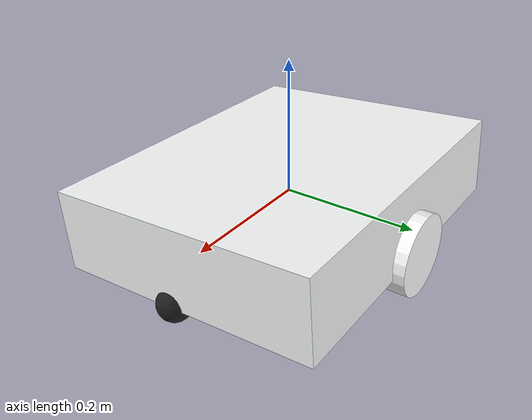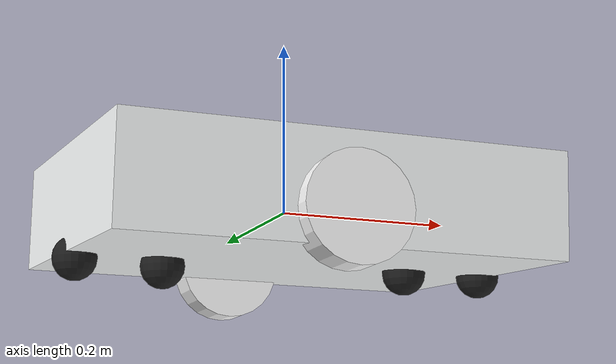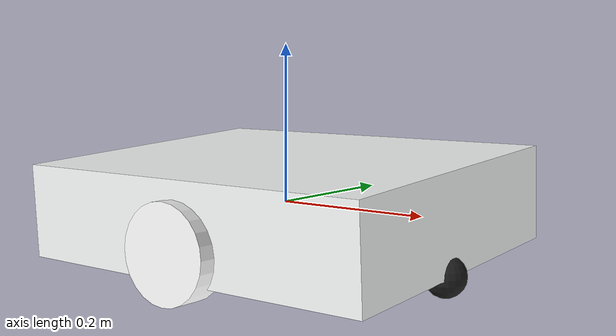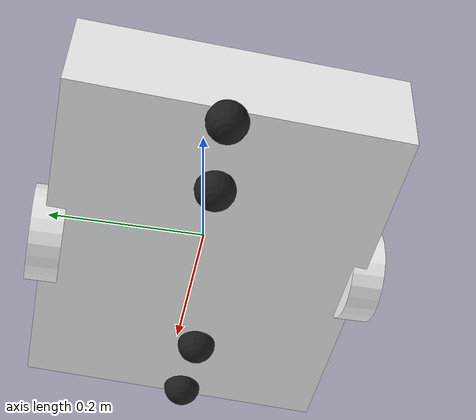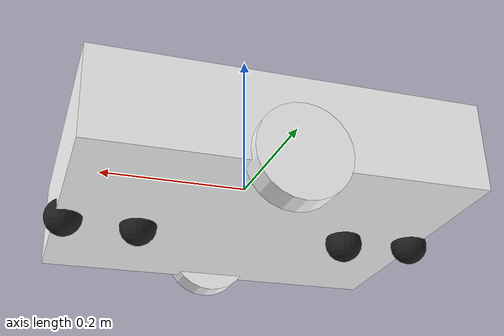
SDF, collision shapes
<sdf version="1.7">
  <model name="issac_seven">

    <link name="base_link">
      <inertial>
        <pose>-0.024847979688122499 -0.0112943222529918 0.036263878636560297 0 0 0</pose>
        <mass>16.045770899709201</mass>
        <inertia>
          <ixx>0.14021509634615001</ixx>
          <ixy>0.00053572133634947699</ixy>
          <ixz>-0.00080546217759708901</ixz>
          <iyy>0.19965922959145199</iyy>
          <iyz>9.8445879167150305e-05</iyz>
          <izz>0.31923817163479101</izz>
        </inertia>
      </inertial>
      <collision name="base_link_collision">
        <pose>0 0 0 0.06 0 0</pose>
        <geometry>
          <box>
           <size>0.5 0.4 0.12</size>
          </box>
        </geometry>
      </collision>
      <visual name="base_link_visual">
        <pose>0 0 0 0 0 0</pose>
        <geometry>
          <mesh>
            <scale>1 1 1</scale>
            <uri>package://bugger/meshes/visual/base_link.STL</uri>
          </mesh>
        </geometry>
        <material>
          <diffuse>0.990196109 1 1 1</diffuse>
          <ambient>0.990196109 1 1 1</ambient>
        </material>
      </visual>
    </link>

    <joint name="dcamera" type="fixed">
      <pose relative_to="base_link">0 0 0 -1.5708 0 0</pose>
      <parent>base_link</parent>
      <child>depth_camera</child>
      <axis>
        <xyz>0 0 1</xyz>
        <limit>
          <lower>-1e+16</lower>
          <upper>1e+16</upper>
        </limit>
        <dynamics>
          <spring_reference>0</spring_reference>
          <spring_stiffness>0</spring_stiffness>
        </dynamics>
      </axis>
    </joint>
    <link name="depth_camera">
      <pose relative_to="dcamera">0 0 0 0 0 0</pose>
      <inertial>
        <pose>0.23648247450318899 0.00043943367118937099 0.0243999681342368 0 0 0</pose>
        <mass>0.110215155258526</mass>
        <inertia>
          <ixx>0.00013522664389295199</ixx>
          <ixy>-6.0551668132357804e-09</ixy>
          <ixz>-1.16922717897847e-08</ixz>
          <iyy>1.2640405785326901e-05</iyy>
          <iyz>-4.4302143023925e-12</iyz>
          <izz>0.00013333399219561201</izz>
        </inertia>
      </inertial>
      <collision name="depth_camera_collision">
        <pose>0 0 0 0 0 0</pose>
        <geometry>
          <box>
           <size>0.06 0.06 0.04</size>
          </box>
        </geometry>
      </collision>
      <visual name="depth_camera_visual">
        <pose>0 0 0 0 0 0</pose>
        <geometry>
          <mesh>
            <scale>1 1 1</scale>
            <uri>package://bugger/meshes/visual/depth_camera.STL</uri>
          </mesh>
        </geometry>
        <material>
          <diffuse>0.622548997 0.622548997 0.622548997 1</diffuse>
          <ambient>0.622548997 0.622548997 0.622548997 1</ambient>
        </material>
      </visual>
      <sensor name="depth_camera" type="rgbd_camera">
        <always_on>true</always_on>
        <visualize>true</visualize>
        <update_rate>15</update_rate>
        <topic>camera</topic>
        <gz_frame_id>depth_camera</gz_frame_id>
        <camera name="depth_camera">
          <horizontal_fov>1.5708</horizontal_fov>
          <image>
            <width>1366</width>
            <height>768</height>
            <format>R8G8B8</format>
          </image>
          <clip>
            <near>1.0</near>
            <far>10.0</far>
          </clip>
          <noise>
            <type>gaussian</type>
            <mean>0.0</mean>
            <stddev>0.007</stddev>
          </noise>
        </camera>
      </sensor>
    </link>

    <joint name="frontcastor" type="revolute">
      <pose relative_to="base_link">0.18875 -0.01515 -0.017100000000000001 0 0 0.029377</pose>
      <parent>base_link</parent>
      <child>front_castor</child>
      <axis>
        <xyz>0 0 -1</xyz>
        <limit>
          <lower>-1e+16</lower>
          <upper>1e+16</upper>
        </limit>
        <dynamics>
          <damping>0.001</damping>
          <friction>0.0</friction>
          <spring_reference>0</spring_reference>
          <spring_stiffness>0</spring_stiffness>
        </dynamics>
      </axis>
    </joint>
    <link name="front_castor">
      <pose relative_to="frontcastor">0 0 0 0 0 0</pose>
      <inertial>
        <pose>-1.4723097191415799e-06 -1.31477673193103e-09 -0.0075492724826718999 0 0 0</pose>
        <mass>0.188433066543013</mass>
        <inertia>
          <ixx>0.00032536537878349398</ixx>
          <ixy>-1.03442588377839e-06</ixy>
          <ixz>-7.8020030948336006e-09</ixz>
          <iyy>0.00019979281882914</iyy>
          <iyz>1.2483225335555199e-18</iyz>
          <izz>0.00046852584631811798</izz>
        </inertia>
      </inertial>
      <collision name="front_castor_collision">
        <pose>0 0 0 0 0 0</pose>
        <geometry>
          <sphere>
            <radius>0.03</radius>
          </sphere>
        </geometry>
        <surface>
          <friction>
            <ode>
              <mu>0.0</mu>
              <mu2>0.0</mu2>
            </ode>
          </friction>
        </surface>
      </collision>
      <visual name="front_castor_visual">
        <pose>0 0 0 0 0 0</pose>
        <geometry>
          <mesh>
            <scale>1 1 1</scale>
            <uri>package://bugger/meshes/visual/front_castor.STL</uri>
          </mesh>
        </geometry>
        <material>
          <diffuse>0.210784316 0.5 0.774509847 1</diffuse>
          <ambient>0.210784316 0.5 0.774509847 1</ambient>
        </material>
      </visual>
    </link>

    <joint name="ffcastor" type="revolute">
      <pose relative_to="front_castor">0.050369999999999998 0 -0.044173999999999998 0 0 0</pose>
      <parent>front_castor</parent>
      <child>ff_castor</child>
      <axis>
        <xyz>0 1 0</xyz>
        <limit>
          <lower>-1e+16</lower>
          <upper>1e+16</upper>
        </limit>
        <dynamics>
          <damping>0.001</damping>
          <friction>0.0001</friction>
          <spring_reference>0</spring_reference>
          <spring_stiffness>0</spring_stiffness>
        </dynamics>
      </axis>
    </joint>
    <link name="ff_castor">
      <pose relative_to="ffcastor">0 0 0 0 0 0</pose>
      <inertial>
        <pose>-2.0192463993318199e-05 -0.000750000002212592 -0.00332627702110022 0 0 0</pose>
        <mass>0.175593255248327</mass>
        <inertia>
          <ixx>5.2232830345647699e-05</ixx>
          <ixy>1.0270274485458401e-20</ixy>
          <ixz>1.34069473916505e-21</ixz>
          <iyy>8.6772528526853402e-05</iyy>
          <iyz>1.5632392087294701e-21</iyz>
          <izz>5.2232830345647699e-05</izz>
        </inertia>
      </inertial>
      <collision name="ff_castor_collision">
        <pose>0 0 0 0 0 0</pose>
        <geometry>
          <sphere>
            <radius>0.025</radius>
          </sphere>
        </geometry>
        <surface>
          <friction>
            <ode>
              <mu>0.0</mu>
              <mu2>0.0</mu2>
            </ode>
          </friction>
        </surface>
      </collision>
      <visual name="ff_castor_visual">
        <pose>0 0 0 0 0 0</pose>
        <geometry>
          <mesh>
            <scale>1 1 1</scale>
            <uri>package://bugger/meshes/visual/ff_castor.STL</uri>
          </mesh>
        </geometry>
        <material>
          <diffuse>0.117647059 0.117647059 0.117647059 1</diffuse>
          <ambient>0.117647059 0.117647059 0.117647059 1</ambient>
        </material>
      </visual>
    </link>

    <joint name="frcastor" type="revolute">
      <pose relative_to="front_castor">-0.047156000000000003 0 -0.04657 0 0 0</pose>
      <parent>front_castor</parent>
      <child>fr_castor</child>
      <axis>
        <xyz>0 1 0</xyz>
        <limit>
          <lower>-1e+16</lower>
          <upper>1e+16</upper>
        </limit>
        <dynamics>
          <damping>0.001</damping>
          <friction>0.0001</friction>
          <spring_reference>0</spring_reference>
          <spring_stiffness>0</spring_stiffness>
        </dynamics>
      </axis>
    </joint>
    <link name="fr_castor">
      <pose relative_to="frcastor">0 0 0 0 0 0</pose>
      <inertial>
        <pose>-0.0031935641557507802 -0.00071666666666692102 -0.00093041632610346703 0 0 0</pose>
        <mass>0.175593255248328</mass>
        <inertia>
          <ixx>5.2232830345647699e-05</ixx>
          <ixy>3.3881317890171999e-21</ixy>
          <ixz>-2.97557288424969e-22</ixz>
          <iyy>8.6772528526853402e-05</iyy>
          <iyz>5.6456260053518302e-21</iyz>
          <izz>5.2232830345647699e-05</izz>
        </inertia>
      </inertial>
      <collision name="fr_castor_collision">
        <pose>0 0 0 0 0 0</pose>
        <geometry>
          <sphere>
            <radius>0.025</radius>
          </sphere>
        </geometry>
        <surface>
          <friction>
            <ode>
              <mu>0.0</mu>
              <mu2>0.0</mu2>
            </ode>
          </friction>
        </surface>
      </collision>
      <visual name="fr_castor_visual">
        <pose>0 0 0 0 0 0</pose>
        <geometry>
          <mesh>
            <scale>1 1 1</scale>
            <uri>package://bugger/meshes/visual/fr_castor.STL</uri>
          </mesh>
        </geometry>
        <material>
          <diffuse>0.117647059 0.117647059 0.117647059 1</diffuse>
          <ambient>0.117647059 0.117647059 0.117647059 1</ambient>
        </material>
      </visual>
    </link>

    <joint name="frontlidar" type="fixed">
      <pose relative_to="base_link">0 0 0 0 0 0</pose>
      <parent>base_link</parent>
      <child>front_lidar</child>
      <axis>
        <xyz>0 0 1</xyz>
        <limit>
          <lower>-1e+16</lower>
          <upper>1e+16</upper>
        </limit>
        <dynamics>
          <spring_reference>0</spring_reference>
          <spring_stiffness>0</spring_stiffness>
        </dynamics>
      </axis>
    </joint>
    <link name="front_lidar">
      <pose relative_to="frontlidar">0 0 0 0 0 0</pose>
      <inertial>
        <pose>0.19891014088599099 0.00123094971141513 0.198753746521451 0 0 0</pose>
        <mass>0.064328080040047697</mass>
        <inertia>
          <ixx>1.20633668132692e-05</ixx>
          <ixy>1.77128240148071e-08</ixy>
          <ixz>-2.2712293543601499e-06</ixz>
          <iyy>2.8634339781218001e-05</iyy>
          <iyz>7.5586989060525997e-09</iyz>
          <izz>3.7413990749141902e-05</izz>
        </inertia>
      </inertial>
      <collision name="front_lidar_collision">
        <pose>0 0 0 0 0 0</pose>
        <geometry>
          <cylinder>
            <radius>0.03</radius>
            <length>0.04</length>
          </cylinder>
        </geometry>
      </collision>
      <visual name="front_lidar_visual">
        <pose>0 0 0 0 0 0</pose>
        <geometry>
          <mesh>
            <scale>1 1 1</scale>
            <uri>package://bugger/meshes/visual/front_lidar.STL</uri>
          </mesh>
        </geometry>
        <material>
          <diffuse>0.990196109 1 1 1</diffuse>
          <ambient>0.990196109 1 1 1</ambient>
        </material>
      </visual>
      <sensor name='lidar' type='gpu_lidar'>
        <topic>scan</topic>
        <update_rate>10</update_rate>
        <lidar>
          <scan>
            <horizontal>
              <samples>180</samples>
              <resolution>1.000</resolution>
              <min_angle>-1.5708</min_angle>
              <max_angle>1.5708</max_angle>
            </horizontal>
          </scan>
          <range>
            <min>0.35</min>
            <max>12.0</max>
            <resolution>0.02</resolution>
          </range>
          <noise>
            <type>gaussian</type>
            <mean>0.0</mean>
            <stddev>0.01</stddev>
          </noise>
        </lidar>
        <alwaysOn>1</alwaysOn>
        <visualize>true</visualize>
      </sensor>
    </link>

    <joint name="leftwheel" type="revolute">
      <pose relative_to="base_link">-0.0022133999999999999 0.19925000000000001 -0.035000000000000003 0 0 0</pose>
      <parent>base_link</parent>
      <child>left_wheel</child>
      <axis>
        <xyz>0 1 0</xyz>
        <limit>
          <lower>-1e+16</lower>
          <upper>1e+16</upper>
        </limit>
        <dynamics>
          <damping>0.1</damping>
          <friction>0.1</friction>
          <spring_reference>0</spring_reference>
          <spring_stiffness>0</spring_stiffness>
        </dynamics>
      </axis>
    </joint>
    <link name="left_wheel">
      <pose relative_to="leftwheel">0 0 0 0 0 0</pose>
      <inertial>
        <pose>-1.45521954928451e-05 0.00068810812810338195 1.7090687301046799e-05 0 0 0</pose>
        <mass>0.266150143776577</mass>
        <inertia>
          <ixx>0.00036335504528209502</ixx>
          <ixy>4.8306260702547e-08</ixy>
          <ixz>-6.2219104212407795e-08</ixz>
          <iyy>0.00065937229319055796</iyy>
          <iyz>-5.6201212546706798e-08</iyz>
          <izz>0.00036391099080892601</izz>
        </inertia>
      </inertial>
      <collision name="left_wheel_collision">
        <pose>0 0 0 1.5707 0 0</pose>
        <geometry>
          <cylinder>
            <radius>0.06</radius>
            <length>0.04</length>
          </cylinder>
        </geometry>
        <surface>
          <friction>
            <ode>
              <mu>1.0</mu>
              <mu2>1.0</mu2>
              <fdir1>0 0 0</fdir1>
              <slip1>0.0</slip1>
              <slip2>0.0</slip2>
            </ode>
          </friction>
          <contact>
            <ode>
              <min_depth>0.001</min_depth>
              <kp>1e6</kp>
              <kd>100</kd>
            </ode>
          </contact>
        </surface>
      </collision>
      <visual name="left_wheel_visual">
        <pose>0 0 0 0 0 0</pose>
        <geometry>
          <mesh>
            <scale>1 1 1</scale>
            <uri>package://bugger/meshes/visual/left_wheel.STL</uri>
          </mesh>
        </geometry>
        <material>
          <diffuse>1 1 1 1</diffuse>
          <ambient>1 1 1 1</ambient>
        </material>
      </visual>
    </link>

    <joint name="rearcastor" type="revolute">
      <pose relative_to="base_link">-0.18917999999999999 0.01515 -0.017100000000000001 0 0 -0.05507699999999998</pose>
      <parent>base_link</parent>
      <child>rear_castor</child>
      <axis>
        <xyz>0 0 -1</xyz>
        <limit>
          <lower>-1e+16</lower>
          <upper>1e+16</upper>
        </limit>
        <dynamics>
          <damping>0.001</damping>
          <friction>0.0</friction>
          <spring_reference>0</spring_reference>
          <spring_stiffness>0</spring_stiffness>
        </dynamics>
      </axis>
    </joint>
    <link name="rear_castor">
      <pose relative_to="rearcastor">0 0 0 0 0 0</pose>
      <inertial>
        <pose>-1.49030058516075e-06 -1.26075393458436e-08 -0.0075492724826721203 0 0 0</pose>
        <mass>0.188433066543014</mass>
        <inertia>
          <ixx>0.00032528900744475503</ixx>
          <ixy>1.93657213819524e-06</ixy>
          <ixz>-7.8020030951416708e-09</ixz>
          <iyy>0.00019986919016788099</iyy>
          <iyz>1.2453551182800499e-18</iyz>
          <izz>0.00046852584631811999</izz>
        </inertia>
      </inertial>
      <collision name="rear_castor_collision">
        <pose>0 0 0 0 0 0</pose>
        <geometry>
          <sphere>
            <radius>0.03</radius>
          </sphere>
        </geometry>
        <surface>
          <friction>
            <ode>
              <mu>0.0</mu>
              <mu2>0.0</mu2>
            </ode>
          </friction>
        </surface>
      </collision>
      <visual name="rear_castor_visual">
        <pose>0 0 0 0 0 0</pose>
        <geometry>
          <mesh>
            <scale>1 1 1</scale>
            <uri>package://bugger/meshes/visual/rear_castor.STL</uri>
          </mesh>
        </geometry>
        <material>
          <diffuse>0.210784316 0.5 0.774509847 1</diffuse>
          <ambient>0.210784316 0.5 0.774509847 1</ambient>
        </material>
      </visual>
    </link>

    <joint name="rfcastor" type="revolute">
      <pose relative_to="rear_castor">0.05033 0 -0.050826000000000003 0 0 0</pose>
      <parent>rear_castor</parent>
      <child>rf_castor</child>
      <axis>
        <xyz>0 1 0</xyz>
        <limit>
          <lower>-1e+16</lower>
          <upper>1e+16</upper>
        </limit>
        <dynamics>
          <damping>0.001</damping>
          <friction>0.0001</friction>
          <spring_reference>0</spring_reference>
          <spring_stiffness>0</spring_stiffness>
        </dynamics>
      </axis>
    </joint>
    <link name="rf_castor">
      <pose relative_to="rfcastor">0 0 0 0 0 0</pose>
      <inertial>
        <pose>2.0192464001977902e-05 -0.00074999999999414402 0.0033262770211004399 0 0 0</pose>
        <mass>0.175593255248329</mass>
        <inertia>
          <ixx>5.2232830345648201e-05</ixx>
          <ixy>-1.8422966602780999e-20</ixy>
          <ixz>1.2901995018405e-21</ixz>
          <iyy>8.6772528526854107e-05</iyy>
          <iyz>5.0656445455467203e-21</iyz>
          <izz>5.2232830345648201e-05</izz>
        </inertia>
      </inertial>
      <collision name="rf_castor_collision">
        <pose>0 0 0 0 0 0</pose>
        <geometry>
          <sphere>
            <radius>0.025</radius>
          </sphere>
        </geometry>
        <surface>
          <friction>
            <ode>
              <mu>0.0</mu>
              <mu2>0.0</mu2>
            </ode>
          </friction>
        </surface>
      </collision>
      <visual name="rf_castor_visual">
        <pose>0 0 0 0 0 0</pose>
        <geometry>
          <mesh>
            <scale>1 1 1</scale>
            <uri>package://bugger/meshes/visual/rf_castor.STL</uri>
          </mesh>
        </geometry>
        <material>
          <diffuse>0.117647059 0.117647059 0.117647059 1</diffuse>
          <ambient>0.117647059 0.117647059 0.117647059 1</ambient>
        </material>
      </visual>
    </link>

    <joint name="rrcastor" type="revolute">
      <pose relative_to="rear_castor">-0.047156000000000003 0 -0.04657 0 0 0</pose>
      <parent>rear_castor</parent>
      <child>rr_castor</child>
      <axis>
        <xyz>0 1 0</xyz>
        <limit>
          <lower>-1e+16</lower>
          <upper>1e+16</upper>
        </limit>
        <dynamics>
          <damping>0.001</damping>
          <friction>0.0001</friction>
          <spring_reference>0</spring_reference>
          <spring_stiffness>0</spring_stiffness>
        </dynamics>
      </axis>
    </joint>
    <link name="rr_castor">
      <pose relative_to="rrcastor">0 0 0 0 0 0</pose>
      <inertial>
        <pose>-0.0031935641557378999 -0.00071666666666214695 -0.00093041632610379999 0 0 0</pose>
        <mass>0.175593255248329</mass>
        <inertia>
          <ixx>5.2232830345648099e-05</ixx>
          <ixy>-9.5291206566108803e-21</ixy>
          <ixz>-2.70252236776506e-21</ixz>
          <iyy>8.6772528526853998e-05</iyy>
          <iyz>3.2388008914376899e-21</iyz>
          <izz>5.2232830345648099e-05</izz>
        </inertia>
      </inertial>
      <collision name="rr_castor_collision">
        <pose>0 0 0 0 0 0</pose>
        <geometry>
          <sphere>
            <radius>0.025</radius>
          </sphere>
        </geometry>
        <surface>
          <friction>
            <ode>
              <mu>0.0</mu>
              <mu2>0.0</mu2>
            </ode>
          </friction>
        </surface>
      </collision>
      <visual name="rr_castor_visual">
        <pose>0 0 0 0 0 0</pose>
        <geometry>
          <mesh>
            <scale>1 1 1</scale>
            <uri>package://bugger/meshes/visual/rr_castor.STL</uri>
          </mesh>
        </geometry>
        <material>
          <diffuse>0.117647059 0.117647059 0.117647059 1</diffuse>
          <ambient>0.117647059 0.117647059 0.117647059 1</ambient>
        </material>
      </visual>
    </link>

    <joint name="rearlidar" type="fixed">
      <pose relative_to="base_link">0 0 0 0 0 0</pose>
      <parent>base_link</parent>
      <child>rear_lidar</child>
      <axis>
        <xyz>0 0 1</xyz>
        <limit>
          <lower>-1e+16</lower>
          <upper>1e+16</upper>
        </limit>
        <dynamics>
          <spring_reference>0</spring_reference>
          <spring_stiffness>0</spring_stiffness>
        </dynamics>
      </axis>
    </joint>
    <link name="rear_lidar">
      <pose relative_to="rearlidar">0 0 0 0 0 0</pose>
      <inertial>
        <pose>-0.19933684634509899 0.00116905028860437 0.19875374652144101 0 0 0</pose>
        <mass>0.064328080040042798</mass>
        <inertia>
          <ixx>1.20633668132683e-05</ixx>
          <ixy>1.7712824013552899e-08</ixy>
          <ixz>2.2712293543600901e-06</ixz>
          <iyy>2.8634339781214701e-05</iyy>
          <iyz>-7.5586989056283106e-09</iyz>
          <izz>3.7413990749137701e-05</izz>
        </inertia>
      </inertial>
      <collision name="rear_lidar_collision">
        <pose>0 0 0 0 0 0</pose>
        <geometry>
          <cylinder>
           <radius>0.03</radius>
           <length>0.04</length>
          </cylinder>
        </geometry>
      </collision>
      <visual name="rear_lidar_visual">
        <pose>0 0 0 0 0 0</pose>
        <geometry>
          <mesh>
            <scale>1 1 1</scale>
            <uri>package://bugger/meshes/visual/rear_lidar.STL</uri>
          </mesh>
        </geometry>
        <material>
          <diffuse>0.990196109 1 1 1</diffuse>
          <ambient>0.990196109 1 1 1</ambient>
        </material>
      </visual>
    </link>

    <joint name="rightwheel" type="revolute">
      <pose relative_to="base_link">-0.0022133999999999999 -0.19925000000000001 -0.035000000000000003 0 0 0</pose>
      <parent>base_link</parent>
      <child>right_wheel</child>
      <axis>
        <xyz>0 1 0</xyz>
        <limit>
          <lower>-1e+16</lower>
          <upper>1e+16</upper>
        </limit>
        <dynamics>
          <damping>0.1</damping>
          <friction>0.1</friction>
          <spring_reference>0</spring_reference>
          <spring_stiffness>0</spring_stiffness>
        </dynamics>
      </axis>
    </joint>
    <link name="right_wheel">
      <pose relative_to="rightwheel">0 0 0 0 0 0</pose>
      <inertial>
        <pose>1.41832273394815e-05 -0.00068899426754764903 -1.8424515181303402e-05 0 0 0</pose>
        <mass>0.26616914297798</mass>
        <inertia>
          <ixx>0.00036384720729019699</ixx>
          <ixy>4.2514951574031e-08</ixy>
          <ixz>-1.8778456164125e-07</ixz>
          <iyy>0.00065937229319055796</iyy>
          <iyz>-6.0700494292680495e-08</iyz>
          <izz>0.00036341882880082502</izz>
        </inertia>
      </inertial>
      <collision name="right_wheel_collision">
        <pose>0 0 0 1.5707 0 0</pose>
        <geometry>
          <cylinder>
           <radius>0.06</radius>
           <length>0.04</length>
          </cylinder>
        </geometry>
        <surface>
          <friction>
            <ode>
              <mu>1.0</mu>
              <mu2>1.0</mu2>
              <fdir1>0 0 0</fdir1>
              <slip1>0.0</slip1>
              <slip2>0.0</slip2>
            </ode>
          </friction>
          <contact>
            <ode>
              <min_depth>0.001</min_depth>
              <kp>1e6</kp>
              <kd>100</kd>
            </ode>
          </contact>
        </surface>
      </collision>
      <visual name="right_wheel_visual">
        <pose>0 0 0 0 0 0</pose>
        <geometry>
          <mesh>
            <scale>1 1 1</scale>
            <uri>package://bugger/meshes/visual/right_wheel.STL</uri>
          </mesh>
        </geometry>
        <material>
          <diffuse>1 1 1 1</diffuse>
          <ambient>1 1 1 1</ambient>
        </material>
      </visual>
    </link>

    <plugin
      filename="gz-sim-diff-drive-system"
      name="gz::sim::systems::DiffDrive">
      <left_joint>leftwheel</left_joint>
      <right_joint>rightwheel</right_joint>
      <wheel_separation>0.39</wheel_separation>
      <wheel_radius>0.06</wheel_radius>
      <odom_publish_frequency>30</odom_publish_frequency>
      <topic>cmd_vel</topic>
      <odom_topic>odom</odom_topic>
      <tf_topic>tf</tf_topic>
      <frame_id>odom</frame_id>
      <child_frame_id>base_link</child_frame_id>
    </plugin>

  </model>
</sdf>
